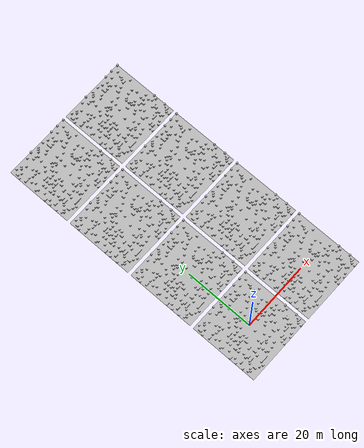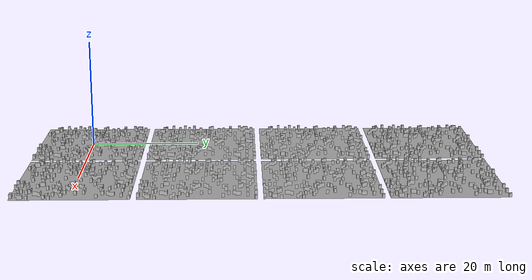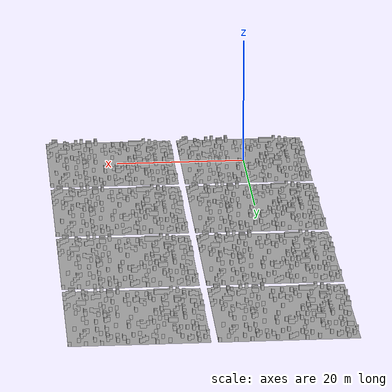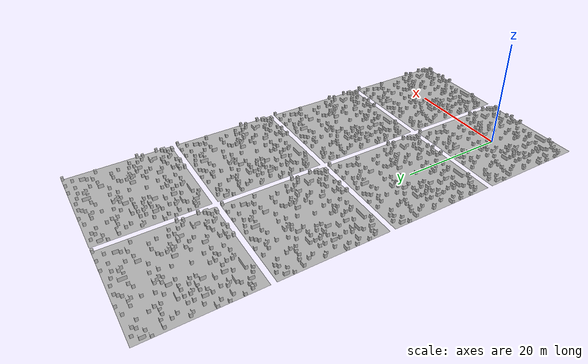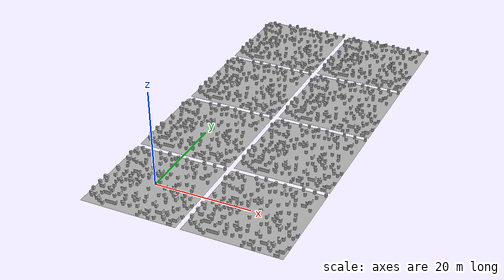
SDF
<?xml version="1.0" ?>

<sdf version='1.6'>
  <world name='default'>
    <include>
      <uri>model://sun</uri>
    </include>

    <include>
      <name>terrain_3_1</name>
      <uri>model://terrain_3</uri>
      <pose>0 0 0 0 0 0</pose>
    </include>

    <include>
      <name>terrain_3_2</name>
      <uri>model://terrain_3</uri>
      <pose>21 0 0 0 0 0</pose>
    </include>

    <include>
      <name>terrain_3_3</name>
      <uri>model://terrain_3</uri>
      <pose>0 21 0 0 0 0</pose>
    </include>

    <include>
      <name>terrain_3_4</name>
      <uri>model://terrain_3</uri>
      <pose>21 21 0 0 0 0</pose>
    </include>

    <include>
      <name>terrain_3_5</name>
      <uri>model://terrain_3</uri>
      <pose>0 42 0 0 0 0</pose>
    </include>

    <include>
      <name>terrain_3_6</name>
      <uri>model://terrain_3</uri>
      <pose>21 42 0 0 0 0</pose>
    </include>

    <include>
      <name>terrain_3_7</name>
      <uri>model://terrain_3</uri>
      <pose>0 63 0 0 0 0</pose>
    </include>

    <include>
      <name>terrain_3_8</name>
      <uri>model://terrain_3</uri>
      <pose>21 63 0 0 0 0</pose>
    </include>

      <physics type="ode" default="true">
        <max_step_size>0.001</max_step_size>
        <real_time_factor>1000</real_time_factor>
        <max_contacts>1</max_contacts>
        <ode>
          <solver>
            <type>quick</type>
            <iters>10</iters>
          </solver>
        </ode>
      </physics>

  </world>
</sdf>

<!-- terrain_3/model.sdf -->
<sdf version="1.5">
  <model name="terrain_3">
    <pose>0 0 0 0 0 0</pose>
    <static>true</static>
    <link name="body">
      <visual name="visual">
        <geometry>
          <mesh><uri>model://terrain_3/media/terrain_3.dae</uri></mesh>
        </geometry>
      </visual>
      <collision name="collision">
        <geometry>
          <mesh><uri>model://terrain_3/media/terrain_3.dae</uri></mesh>
        </geometry>
        <surface>
	      <bounce>
		<restitution_coefficient>0</restitution_coefficient>
		<threshold>1e+06</threshold>
	      </bounce>
	      <contact>
		<collide_without_contact>0</collide_without_contact>
		<collide_without_contact_bitmask>1</collide_without_contact_bitmask>
		<collide_bitmask>1</collide_bitmask>
		<ode>
		  <soft_cfm>0</soft_cfm>
		  <soft_erp>0.2</soft_erp>
		  <kp>1e+6</kp>
		  <kd>1e+3</kd>
		  <max_vel>0</max_vel>
		  <min_depth>0.001</min_depth>
		</ode>
		<bullet>
		  <split_impulse>1</split_impulse>
		  <split_impulse_penetration_threshold>-0.01</split_impulse_penetration_threshold>
		  <soft_cfm>0</soft_cfm>
		  <soft_erp>0.2</soft_erp>
		  <kp>1e+6</kp>
		  <kd>1e+3</kd>
		</bullet>
	      </contact>
	      <soft_contact>
		<dart>
		  <bone_attachment>10</bone_attachment>
		  <stiffness>10</stiffness>
		  <damping>1</damping>
		</dart>
	      </soft_contact>
	      <friction>
		<ode>
		  <mu>1+e100</mu>
		  <mu2>10000</mu2>
		  <fdir1>0 0 1</fdir1>
		  <slip1>0</slip1>
		  <slip2>0</slip2>
		</ode>
		<torsional>
		  <coefficient>1</coefficient>
		  <patch_radius>0</patch_radius>
		  <surface_radius>0</surface_radius>
		  <use_patch_radius>1</use_patch_radius>
		  <ode>
		    <slip>0</slip>
		  </ode>
		</torsional>
	      </friction>
	    </surface>
      </collision>
    </link>
  </model>
</sdf>
